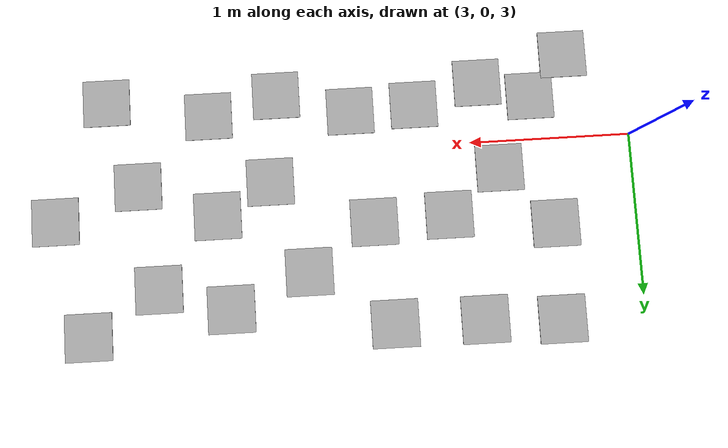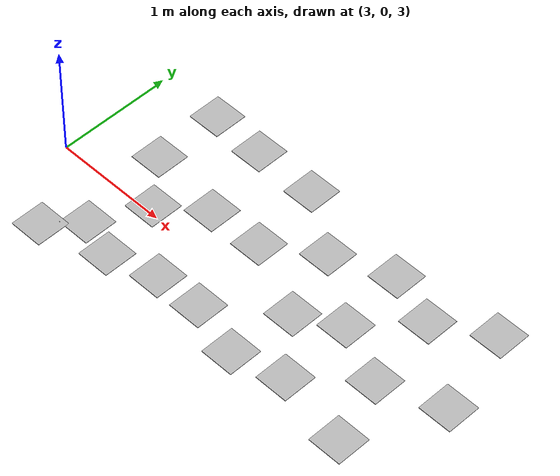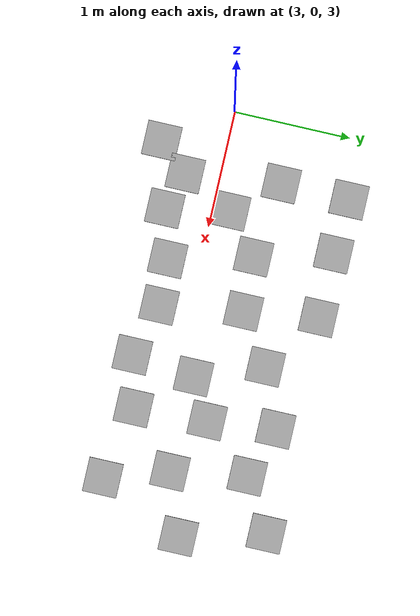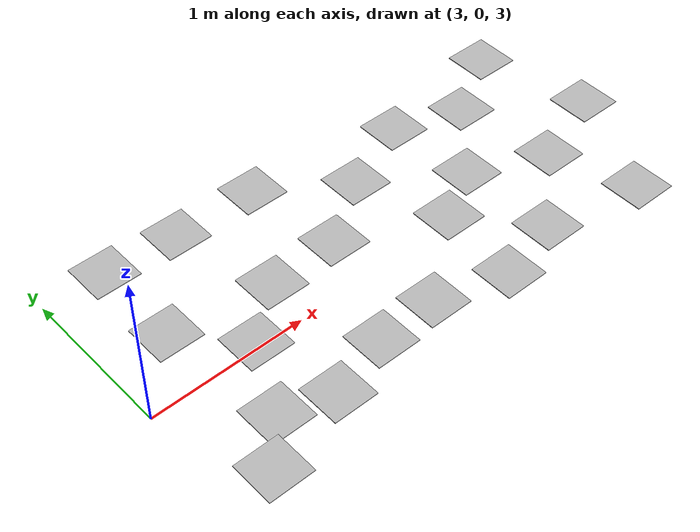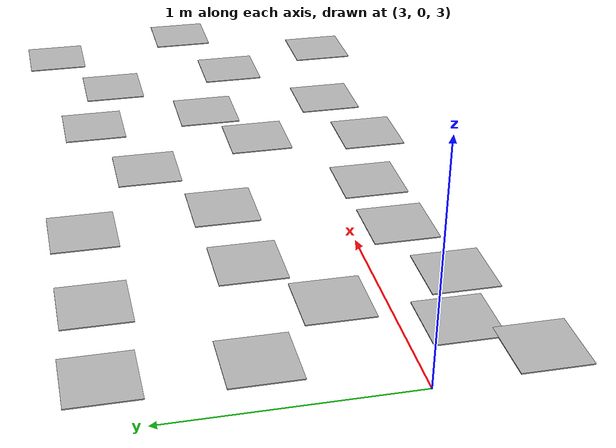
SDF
<sdf version="1.6">
 <world name="vrc_task_1">
  <model name="3_3_clone_0">
   <static>1</static>
   <link name="link">
    <collision name="collision"><geometry><box><size>0.3 0.3 0.005</size></box></geometry></collision>
    <visual name="visual">
     <cast_shadows>0</cast_shadows>
     <geometry><box><size>0.3 0.3 0.005</size></box></geometry>
     <material>
      <script>
       <uri>model://3_3/materials/scripts</uri>
       <uri>model://3_3/materials/textures</uri>
       <name>3_3</name>
      </script>
     </material>
    </visual>
   </link>
   <pose>3.4721 1.12637 2.85801 0 -0 0</pose>
  </model>
  <model name="3_3_clone_1">
   <static>1</static>
   <link name="link">
    <collision name="collision"><geometry><box><size>0.3 0.3 0.005</size></box></geometry></collision>
    <visual name="visual">
     <cast_shadows>0</cast_shadows>
     <geometry><box><size>0.3 0.3 0.005</size></box></geometry>
     <material>
      <script>
       <uri>model://3_3/materials/scripts</uri>
       <uri>model://3_3/materials/textures</uri>
       <name>3_3</name>
      </script>
     </material>
    </visual>
   </link>
   <pose>3.95729 1.10156 2.85801 0 -0 0</pose>
  </model>
  <model name="3_3_clone_2">
   <static>1</static>
   <link name="link">
    <collision name="collision"><geometry><box><size>0.3 0.3 0.005</size></box></geometry></collision>
    <visual name="visual">
     <cast_shadows>0</cast_shadows>
     <geometry><box><size>0.3 0.3 0.005</size></box></geometry>
     <material>
      <script>
       <uri>model://3_3/materials/scripts</uri>
       <uri>model://3_3/materials/textures</uri>
       <name>3_3</name>
      </script>
     </material>
    </visual>
   </link>
   <pose>4.1381 0.430497 2.85801 0 -0 0</pose>
  </model>
  <model name="3_3_clone_3">
   <static>1</static>
   <link name="link">
    <collision name="collision"><geometry><box><size>0.3 0.3 0.005</size></box></geometry></collision>
    <visual name="visual">
     <cast_shadows>0</cast_shadows>
     <geometry><box><size>0.3 0.3 0.005</size></box></geometry>
     <material>
      <script>
       <uri>model://3_3/materials/scripts</uri>
       <uri>model://3_3/materials/textures</uri>
       <name>3_3</name>
      </script>
     </material>
    </visual>
   </link>
   <pose>3.46584 0.522085 2.85801 0 -0 0</pose>
  </model>
  <model name="3_3_clone_4">
   <static>1</static>
   <link name="link">
    <collision name="collision"><geometry><box><size>0.3 0.3 0.005</size></box></geometry></collision>
    <visual name="visual">
     <cast_shadows>0</cast_shadows>
     <geometry><box><size>0.3 0.3 0.005</size></box></geometry>
     <material>
      <script>
       <uri>model://3_3/materials/scripts</uri>
       <uri>model://3_3/materials/textures</uri>
       <name>3_3</name>
      </script>
     </material>
    </visual>
   </link>
   <pose>3.56749 -0.308765 2.85801 0 -0 0</pose>
  </model>
  <model name="3_3_clone_5">
   <static>1</static>
   <link name="link">
    <collision name="collision"><geometry><box><size>0.3 0.3 0.005</size></box></geometry></collision>
    <visual name="visual">
     <cast_shadows>0</cast_shadows>
     <geometry><box><size>0.3 0.3 0.005</size></box></geometry>
     <material>
      <script>
       <uri>model://3_3/materials/scripts</uri>
       <uri>model://3_3/materials/textures</uri>
       <name>3_3</name>
      </script>
     </material>
    </visual>
   </link>
   <pose>4.31924 -0.292345 2.85801 0 -0 0</pose>
  </model>
  <model name="3_3_clone_6">
   <static>1</static>
   <link name="link">
    <collision name="collision"><geometry><box><size>0.3 0.3 0.005</size></box></geometry></collision>
    <visual name="visual">
     <cast_shadows>0</cast_shadows>
     <geometry><box><size>0.3 0.3 0.005</size></box></geometry>
     <material>
      <script>
       <uri>model://3_3/materials/scripts</uri>
       <uri>model://3_3/materials/textures</uri>
       <name>3_3</name>
      </script>
     </material>
    </visual>
   </link>
   <pose>4.73011 -0.274043 2.85801 0 -0 0</pose>
  </model>
  <model name="3_3_clone_7">
   <static>1</static>
   <link name="link">
    <collision name="collision"><geometry><box><size>0.3 0.3 0.005</size></box></geometry></collision>
    <visual name="visual">
     <cast_shadows>0</cast_shadows>
     <geometry><box><size>0.3 0.3 0.005</size></box></geometry>
     <material>
      <script>
       <uri>model://3_3/materials/scripts</uri>
       <uri>model://3_3/materials/textures</uri>
       <name>3_3</name>
      </script>
     </material>
    </visual>
   </link>
   <pose>4.61779 0.450054 2.85801 0 -0 0</pose>
  </model>
  <model name="3_3_clone_8">
   <static>1</static>
   <link name="link">
    <collision name="collision"><geometry><box><size>0.3 0.3 0.005</size></box></geometry></collision>
    <visual name="visual">
     <cast_shadows>0</cast_shadows>
     <geometry><box><size>0.3 0.3 0.005</size></box></geometry>
     <material>
      <script>
       <uri>model://3_3/materials/scripts</uri>
       <uri>model://3_3/materials/textures</uri>
       <name>3_3</name>
      </script>
     </material>
    </visual>
   </link>
   <pose>4.52489 1.09624 2.85801 0 -0 0</pose>
  </model>
  <model name="3_3_clone_9">
   <static>1</static>
   <link name="link">
    <collision name="collision"><geometry><box><size>0.3 0.3 0.005</size></box></geometry></collision>
    <visual name="visual">
     <cast_shadows>0</cast_shadows>
     <geometry><box><size>0.3 0.3 0.005</size></box></geometry>
     <material>
      <script>
       <uri>model://3_3/materials/scripts</uri>
       <uri>model://3_3/materials/textures</uri>
       <name>3_3</name>
      </script>
     </material>
    </visual>
   </link>
   <pose>3.79547 0.147488 2.85801 0 -0 0</pose>
  </model>
  <model name="3_3_clone_10">
   <static>1</static>
   <link name="link">
    <collision name="collision"><geometry><box><size>0.3 0.3 0.005</size></box></geometry></collision>
    <visual name="visual">
     <cast_shadows>0</cast_shadows>
     <geometry><box><size>0.3 0.3 0.005</size></box></geometry>
     <material>
      <script>
       <uri>model://3_3/materials/scripts</uri>
       <uri>model://3_3/materials/textures</uri>
       <name>3_3</name>
      </script>
     </material>
    </visual>
   </link>
   <pose>3.90103 -0.413908 2.85801 0 -0 0</pose>
  </model>
  <model name="3_3_clone_11">
   <static>1</static>
   <link name="link">
    <collision name="collision"><geometry><box><size>0.3 0.3 0.005</size></box></geometry></collision>
    <visual name="visual">
     <cast_shadows>0</cast_shadows>
     <geometry><box><size>0.3 0.3 0.005</size></box></geometry>
     <material>
      <script>
       <uri>model://3_3/materials/scripts</uri>
       <uri>model://3_3/materials/textures</uri>
       <name>3_3</name>
      </script>
     </material>
    </visual>
   </link>
   <pose>3.33475 -0.57082 2.85801 0 -0 0</pose>
  </model>
  <model name="3_3_clone_8_clone">
   <static>1</static>
   <link name="link">
    <collision name="collision"><geometry><box><size>0.3 0.3 0.005</size></box></geometry></collision>
    <visual name="visual">
     <cast_shadows>0</cast_shadows>
     <geometry><box><size>0.3 0.3 0.005</size></box></geometry>
     <material>
      <script>
       <uri>model://3_3/materials/scripts</uri>
       <uri>model://3_3/materials/textures</uri>
       <name>3_3</name>
      </script>
     </material>
    </visual>
   </link>
   <pose>5.20335 -0.402753 2.85801 0 -0 0</pose>
  </model>
  <model name="3_3_clone_8_clone_0">
   <static>1</static>
   <link name="link">
    <collision name="collision"><geometry><box><size>0.3 0.3 0.005</size></box></geometry></collision>
    <visual name="visual">
     <cast_shadows>0</cast_shadows>
     <geometry><box><size>0.3 0.3 0.005</size></box></geometry>
     <material>
      <script>
       <uri>model://3_3/materials/scripts</uri>
       <uri>model://3_3/materials/textures</uri>
       <name>3_3</name>
      </script>
     </material>
    </visual>
   </link>
   <pose>5.26623 0.156136 2.85801 0 -0 0</pose>
  </model>
  <model name="3_3_clone_8_clone_1">
   <static>1</static>
   <link name="link">
    <collision name="collision"><geometry><box><size>0.3 0.3 0.005</size></box></geometry></collision>
    <visual name="visual">
     <cast_shadows>0</cast_shadows>
     <geometry><box><size>0.3 0.3 0.005</size></box></geometry>
     <material>
      <script>
       <uri>model://3_3/materials/scripts</uri>
       <uri>model://3_3/materials/textures</uri>
       <name>3_3</name>
      </script>
     </material>
    </visual>
   </link>
   <pose>5.0464 0.742542 2.85801 0 -0 0</pose>
  </model>
  <model name="3_3_clone_8_clone_2">
   <static>1</static>
   <link name="link">
    <collision name="collision"><geometry><box><size>0.3 0.3 0.005</size></box></geometry></collision>
    <visual name="visual">
     <cast_shadows>0</cast_shadows>
     <geometry><box><size>0.3 0.3 0.005</size></box></geometry>
     <material>
      <script>
       <uri>model://3_3/materials/scripts</uri>
       <uri>model://3_3/materials/textures</uri>
       <name>3_3</name>
      </script>
     </material>
    </visual>
   </link>
   <pose>5.54974 0.949619 2.85801 0 -0 0</pose>
  </model>
  <model name="3_3_clone_8_clone_3">
   <static>1</static>
   <link name="link">
    <collision name="collision"><geometry><box><size>0.3 0.3 0.005</size></box></geometry></collision>
    <visual name="visual">
     <cast_shadows>0</cast_shadows>
     <geometry><box><size>0.3 0.3 0.005</size></box></geometry>
     <material>
      <script>
       <uri>model://3_3/materials/scripts</uri>
       <uri>model://3_3/materials/textures</uri>
       <name>3_3</name>
      </script>
     </material>
    </visual>
   </link>
   <pose>6.00089 0.801481 2.85801 0 -0 0</pose>
  </model>
  <model name="3_3_clone_8_clone_4">
   <static>1</static>
   <link name="link">
    <collision name="collision"><geometry><box><size>0.3 0.3 0.005</size></box></geometry></collision>
    <visual name="visual">
     <cast_shadows>0</cast_shadows>
     <geometry><box><size>0.3 0.3 0.005</size></box></geometry>
     <material>
      <script>
       <uri>model://3_3/materials/scripts</uri>
       <uri>model://3_3/materials/textures</uri>
       <name>3_3</name>
      </script>
     </material>
    </visual>
   </link>
   <pose>5.61128 0.355564 2.85801 0 -0 0</pose>
  </model>
  <model name="3_3_clone_8_clone_5">
   <static>1</static>
   <link name="link">
    <collision name="collision"><geometry><box><size>0.3 0.3 0.005</size></box></geometry></collision>
    <visual name="visual">
     <cast_shadows>0</cast_shadows>
     <geometry><box><size>0.3 0.3 0.005</size></box></geometry>
     <material>
      <script>
       <uri>model://3_3/materials/scripts</uri>
       <uri>model://3_3/materials/textures</uri>
       <name>3_3</name>
      </script>
     </material>
    </visual>
   </link>
   <pose>6.11103 0.140373 2.85801 0 -0 0</pose>
  </model>
  <model name="3_3_clone_8_clone_6">
   <static>1</static>
   <link name="link">
    <collision name="collision"><geometry><box><size>0.3 0.3 0.005</size></box></geometry></collision>
    <visual name="visual">
     <cast_shadows>0</cast_shadows>
     <geometry><box><size>0.3 0.3 0.005</size></box></geometry>
     <material>
      <script>
       <uri>model://3_3/materials/scripts</uri>
       <uri>model://3_3/materials/textures</uri>
       <name>3_3</name>
      </script>
     </material>
    </visual>
   </link>
   <pose>5.64347 -0.291094 2.85801 0 -0 0</pose>
  </model>
  <model name="3_3_clone_8_clone_7">
   <static>1</static>
   <link name="link">
    <collision name="collision"><geometry><box><size>0.3 0.3 0.005</size></box></geometry></collision>
    <visual name="visual">
     <cast_shadows>0</cast_shadows>
     <geometry><box><size>0.3 0.3 0.005</size></box></geometry>
     <material>
      <script>
       <uri>model://3_3/materials/scripts</uri>
       <uri>model://3_3/materials/textures</uri>
       <name>3_3</name>
      </script>
     </material>
    </visual>
   </link>
   <pose>6.29595 -0.413233 2.85801 0 -0 0</pose>
  </model>
  <model name="3_3_clone_8_clone_9">
   <static>1</static>
   <link name="link">
    <collision name="collision"><geometry><box><size>0.3 0.3 0.005</size></box></geometry></collision>
    <visual name="visual">
     <cast_shadows>0</cast_shadows>
     <geometry><box><size>0.3 0.3 0.005</size></box></geometry>
     <material>
      <script>
       <uri>model://3_3/materials/scripts</uri>
       <uri>model://3_3/materials/textures</uri>
       <name>3_3</name>
      </script>
     </material>
    </visual>
   </link>
   <pose>6.64279 0.336666 2.85801 0 -0 0</pose>
  </model>
  <model name="3_3_clone_8_clone_10">
   <static>1</static>
   <link name="link">
    <collision name="collision"><geometry><box><size>0.3 0.3 0.005</size></box></geometry></collision>
    <visual name="visual">
     <cast_shadows>0</cast_shadows>
     <geometry><box><size>0.3 0.3 0.005</size></box></geometry>
     <material>
      <script>
       <uri>model://3_3/materials/scripts</uri>
       <uri>model://3_3/materials/textures</uri>
       <name>3_3</name>
      </script>
     </material>
    </visual>
   </link>
   <pose>6.45177 1.07377 2.85801 0 -0 0</pose>
  </model>
 </world>
</sdf>
